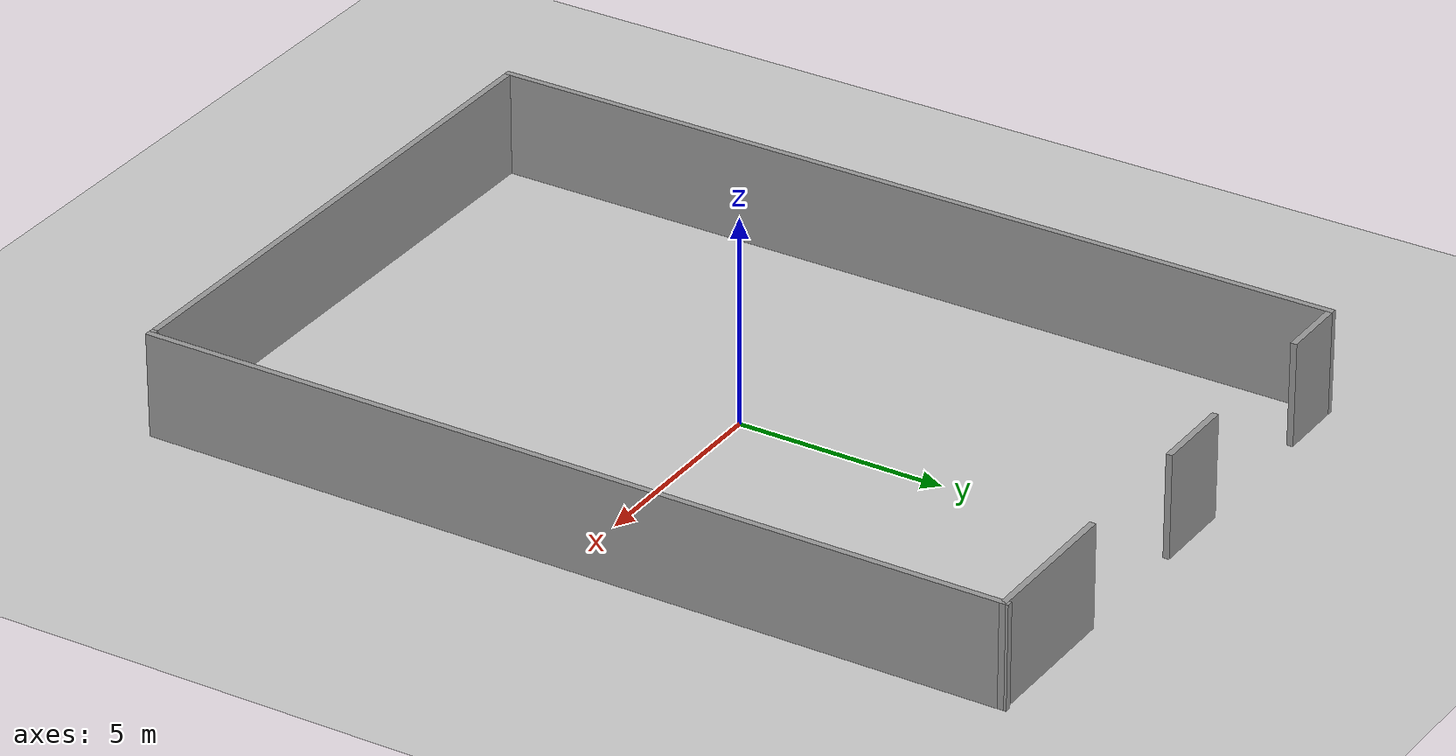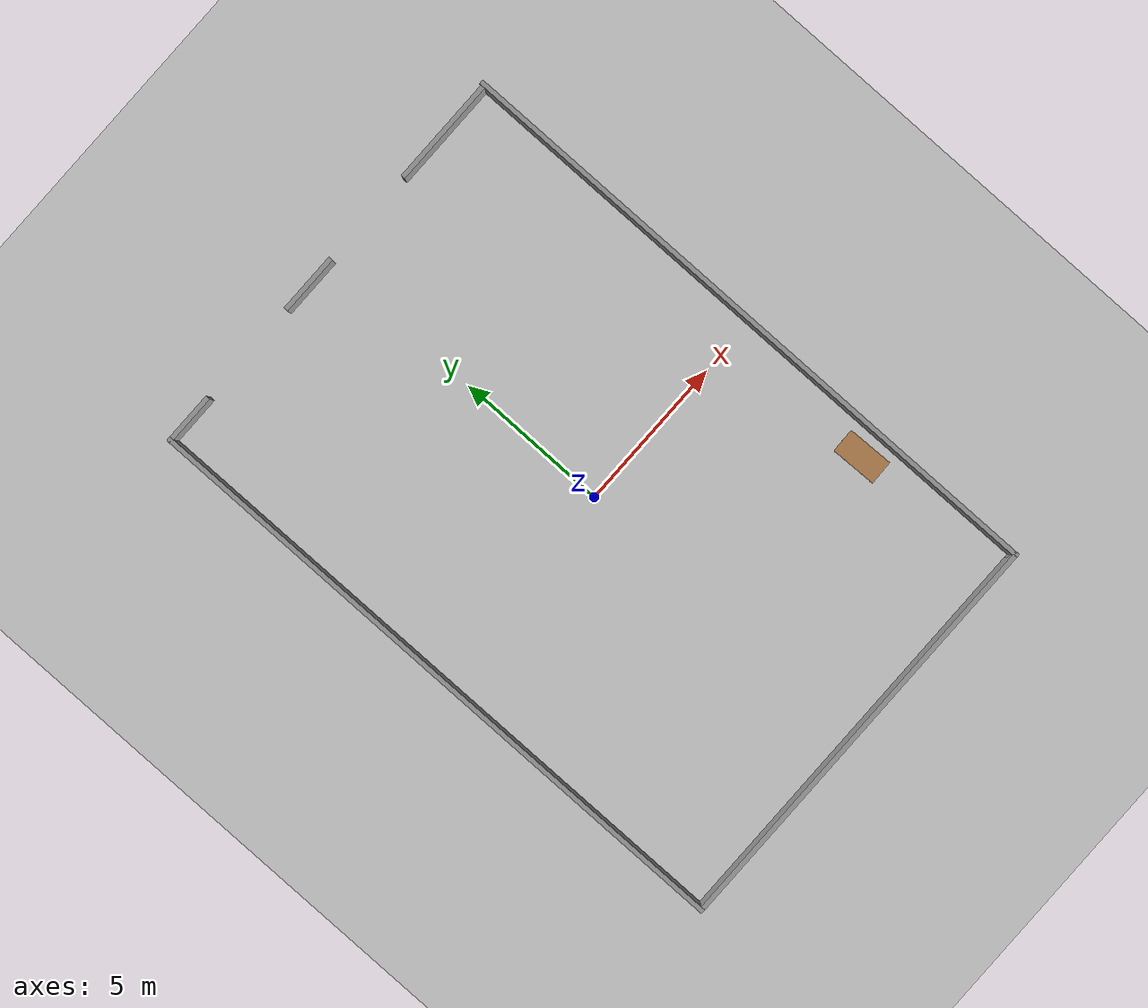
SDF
<sdf version="1.7">
 <world name="default">
  <light name="sun" type="directional">
   <pose>0 0 10 0 -0 0</pose>
   <diffuse>0.8 0.8 0.8 1</diffuse>
   <specular>0.2 0.2 0.2 1</specular>
   <attenuation>
    <range>1000</range>
    <constant>0.9</constant>
    <linear>0.01</linear>
    <quadratic>0.001</quadratic>
   </attenuation>
   <direction>-0.5 0.1 -0.9</direction>
   <spot><inner_angle>0</inner_angle><outer_angle>0</outer_angle><falloff>0</falloff></spot>
  </light>
  <model name="ground_plane">
   <static>1</static>
   <link name="link">
    <collision name="collision">
     <geometry><plane><normal>0 0 1</normal><size>100 100</size></plane></geometry>
     <surface><friction><ode><mu>100</mu><mu2>50</mu2></ode></friction></surface>
    </collision>
    <visual name="visual">
     <cast_shadows>0</cast_shadows>
     <geometry><plane><normal>0 0 1</normal><size>100 100</size></plane></geometry>
     <material>
      <script><uri>file://media/materials/scripts/gazebo.material</uri><name>Gazebo/Grey</name></script>
     </material>
    </visual>
   </link>
  </model>
  <gravity>0 0 -9.8</gravity>
  <magnetic_field>6e-06 2.3e-05 -4.2e-05</magnetic_field>
  <atmosphere type="adiabatic"/>
  <physics type="ode">
   <max_step_size>0.001</max_step_size>
   <real_time_factor>1</real_time_factor>
   <real_time_update_rate>1000</real_time_update_rate>
  </physics>
  <scene><ambient>0.4 0.4 0.4 1</ambient><background>0.7 0.7 0.7 1</background><shadows>1</shadows></scene>
  <audio><device>default</device></audio>
  <spherical_coordinates>
   <surface_model>EARTH_WGS84</surface_model>
   <latitude_deg>0</latitude_deg>
   <longitude_deg>0</longitude_deg>
   <elevation>0</elevation>
   <heading_deg>0</heading_deg>
  </spherical_coordinates>
  <model name="simple_wall_env">
   <pose>-0.04433 0.06557 0 0 -0 0</pose>
   <link name="Wall_24">
    <collision name="Wall_24_Collision">
     <geometry><box><size>21 0.15 2.5</size></box></geometry>
     <pose>0 0 1.25 0 -0 0</pose>
    </collision>
    <visual name="Wall_24_Visual">
     <pose>0 0 1.25 0 -0 0</pose>
     <geometry><box><size>21 0.15 2.5</size></box></geometry>
     <material>
      <script><uri>file://media/materials/scripts/gazebo.material</uri><name>Gazebo/Grey</name></script>
      <ambient>1 1 1 1</ambient>
     </material>
     <meta><layer>0</layer></meta>
    </visual>
    <pose>-6.9747 -0.030763 0 0 -0 1.57077</pose>
   </link>
   <link name="Wall_29">
    <collision name="Wall_29_Collision">
     <geometry><box><size>14 0.15 2.5</size></box></geometry>
     <pose>0 0 1.25 0 -0 0</pose>
    </collision>
    <visual name="Wall_29_Visual">
     <pose>0 0 1.25 0 -0 0</pose>
     <geometry><box><size>14 0.15 2.5</size></box></geometry>
     <material>
      <script><uri>file://media/materials/scripts/gazebo.material</uri><name>Gazebo/Grey</name></script>
      <ambient>1 1 1 1</ambient>
     </material>
     <meta><layer>0</layer></meta>
    </visual>
    <pose>-0.05 -10.4558 0 0 -0 0</pose>
   </link>
   <link name="Wall_37">
    <collision name="Wall_37_Collision">
     <geometry><box><size>0.25 0.15 2.5</size></box></geometry>
     <pose>0 0 1.25 0 -0 0</pose>
    </collision>
    <visual name="Wall_37_Visual">
     <pose>0 0 1.25 0 -0 0</pose>
     <geometry><box><size>0.25 0.15 2.5</size></box></geometry>
     <material>
      <script><uri>file://media/materials/scripts/gazebo.material</uri><name>Gazebo/Grey</name></script>
      <ambient>1 1 1 1</ambient>
     </material>
     <meta><layer>0</layer></meta>
    </visual>
    <pose>6.925 -10.4558 0 0 -0 0</pose>
   </link>
   <link name="Wall_38">
    <collision name="Wall_38_Collision">
     <geometry><box><size>21.0615 0.15 2.5</size></box></geometry>
     <pose>0 0 1.25 0 -0 0</pose>
    </collision>
    <visual name="Wall_38_Visual">
     <pose>0 0 1.25 0 -0 0</pose>
     <geometry><box><size>21.0615 0.15 2.5</size></box></geometry>
     <material>
      <script><uri>file://media/materials/scripts/gazebo.material</uri><name>Gazebo/Grey</name></script>
      <ambient>1 1 1 1</ambient>
     </material>
     <meta><layer>0</layer></meta>
    </visual>
    <pose>6.975 1e-06 0 0 -0 1.5708</pose>
   </link>
   <link name="Wall_40">
    <collision name="Wall_40_Collision">
     <geometry><box><size>1.75 0.15 2.5</size></box></geometry>
     <pose>0 0 1.25 0 -0 0</pose>
    </collision>
    <visual name="Wall_40_Visual">
     <pose>0 0 1.25 0 -0 0</pose>
     <geometry><box><size>1.75 0.15 2.5</size></box></geometry>
     <material>
      <script><uri>file://media/materials/scripts/gazebo.material</uri><name>Gazebo/Grey</name></script>
      <ambient>1 1 1 1</ambient>
     </material>
     <meta><layer>0</layer></meta>
    </visual>
    <pose>-6.17439 10.3942 0 0 -0 0</pose>
   </link>
   <link name="Wall_45">
    <collision name="Wall_45_Collision">
     <geometry><box><size>2 0.15 2.5</size></box></geometry>
     <pose>0 0 1.25 0 -0 0</pose>
    </collision>
    <visual name="Wall_45_Visual">
     <pose>0 0 1.25 0 -0 0</pose>
     <geometry><box><size>2 0.15 2.5</size></box></geometry>
     <material>
      <script><uri>file://media/materials/scripts/gazebo.material</uri><name>Gazebo/Grey</name></script>
      <ambient>1 1 1 1</ambient>
     </material>
     <meta><layer>0</layer></meta>
    </visual>
    <pose>-0.849392 10.3942 0 0 -0 0</pose>
   </link>
   <link name="Wall_47">
    <collision name="Wall_47_Collision">
     <geometry><box><size>3.69939 0.15 2.5</size></box></geometry>
     <pose>0 0 1.25 0 -0 0</pose>
    </collision>
    <visual name="Wall_47_Visual">
     <pose>0 0 1.25 0 -0 0</pose>
     <geometry><box><size>3.69939 0.15 2.5</size></box></geometry>
     <material>
      <script><uri>file://media/materials/scripts/gazebo.material</uri><name>Gazebo/Grey</name></script>
      <ambient>1 1 1 1</ambient>
     </material>
     <meta><layer>0</layer></meta>
    </visual>
    <pose>5.2003 10.3942 0 0 -0 0</pose>
   </link>
   <static>1</static>
  </model>
  <model name="table">
   <static>1</static>
   <link name="link">
    <collision name="surface">
     <pose>0 0 1 0 -0 0</pose>
     <geometry><box><size>1.5 0.8 0.03</size></box></geometry>
     <surface><friction><ode><mu>0.6</mu><mu2>0.6</mu2></ode></friction></surface>
    </collision>
    <visual name="visual1">
     <pose>0 0 1 0 -0 0</pose>
     <geometry><box><size>1.5 0.8 0.03</size></box></geometry>
     <material>
      <script><uri>file://media/materials/scripts/gazebo.material</uri><name>Gazebo/Wood</name></script>
     </material>
    </visual>
    <collision name="front_left_leg">
     <pose>0.68 0.38 0.5 0 -0 0</pose>
     <geometry><cylinder><radius>0.02</radius><length>1</length></cylinder></geometry>
    </collision>
    <visual name="front_left_leg">
     <pose>0.68 0.38 0.5 0 -0 0</pose>
     <geometry><cylinder><radius>0.02</radius><length>1</length></cylinder></geometry>
     <material>
      <script><uri>file://media/materials/scripts/gazebo.material</uri><name>Gazebo/Grey</name></script>
     </material>
    </visual>
    <collision name="front_right_leg">
     <pose>0.68 -0.38 0.5 0 -0 0</pose>
     <geometry><cylinder><radius>0.02</radius><length>1</length></cylinder></geometry>
    </collision>
    <visual name="front_right_leg">
     <pose>0.68 -0.38 0.5 0 -0 0</pose>
     <geometry><cylinder><radius>0.02</radius><length>1</length></cylinder></geometry>
     <material>
      <script><uri>file://media/materials/scripts/gazebo.material</uri><name>Gazebo/Grey</name></script>
     </material>
    </visual>
    <collision name="back_right_leg">
     <pose>-0.68 -0.38 0.5 0 -0 0</pose>
     <geometry><cylinder><radius>0.02</radius><length>1</length></cylinder></geometry>
    </collision>
    <visual name="back_right_leg">
     <pose>-0.68 -0.38 0.5 0 -0 0</pose>
     <geometry><cylinder><radius>0.02</radius><length>1</length></cylinder></geometry>
     <material>
      <script><uri>file://media/materials/scripts/gazebo.material</uri><name>Gazebo/Grey</name></script>
     </material>
    </visual>
    <collision name="back_left_leg">
     <pose>-0.68 0.38 0.5 0 -0 0</pose>
     <geometry><cylinder><radius>0.02</radius><length>1</length></cylinder></geometry>
    </collision>
    <visual name="back_left_leg">
     <pose>-0.68 0.38 0.5 0 -0 0</pose>
     <geometry><cylinder><radius>0.02</radius><length>1</length></cylinder></geometry>
     <material>
      <script><uri>file://media/materials/scripts/gazebo.material</uri><name>Gazebo/Grey</name></script>
     </material>
    </visual>
   </link>
   <pose>6.1353 -5.12561 0.126429 0 -0 1.59537</pose>
  </model>
 </world>
</sdf>
